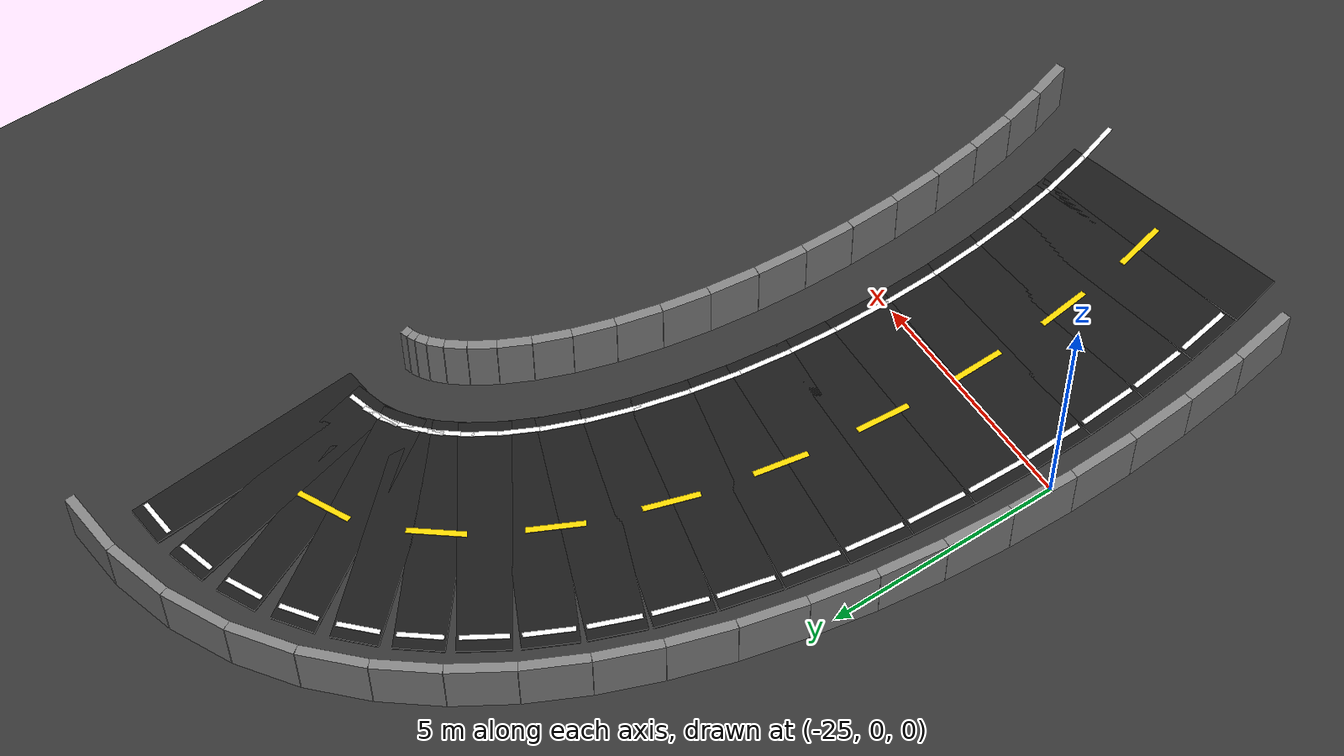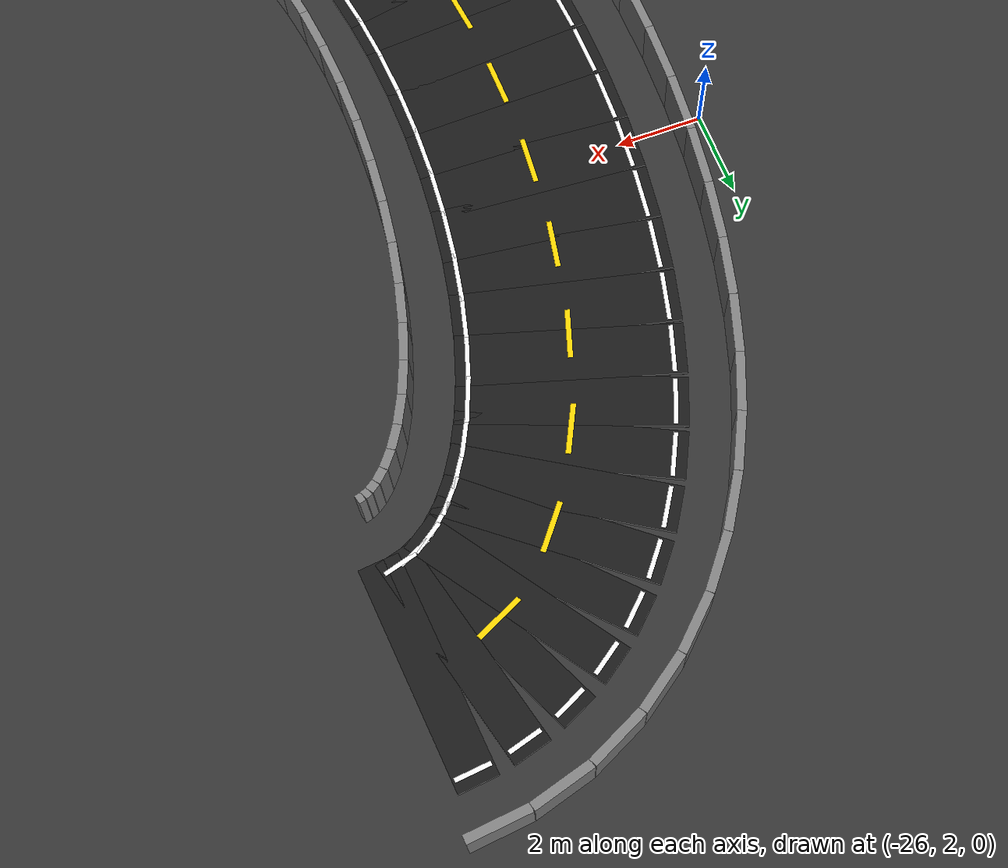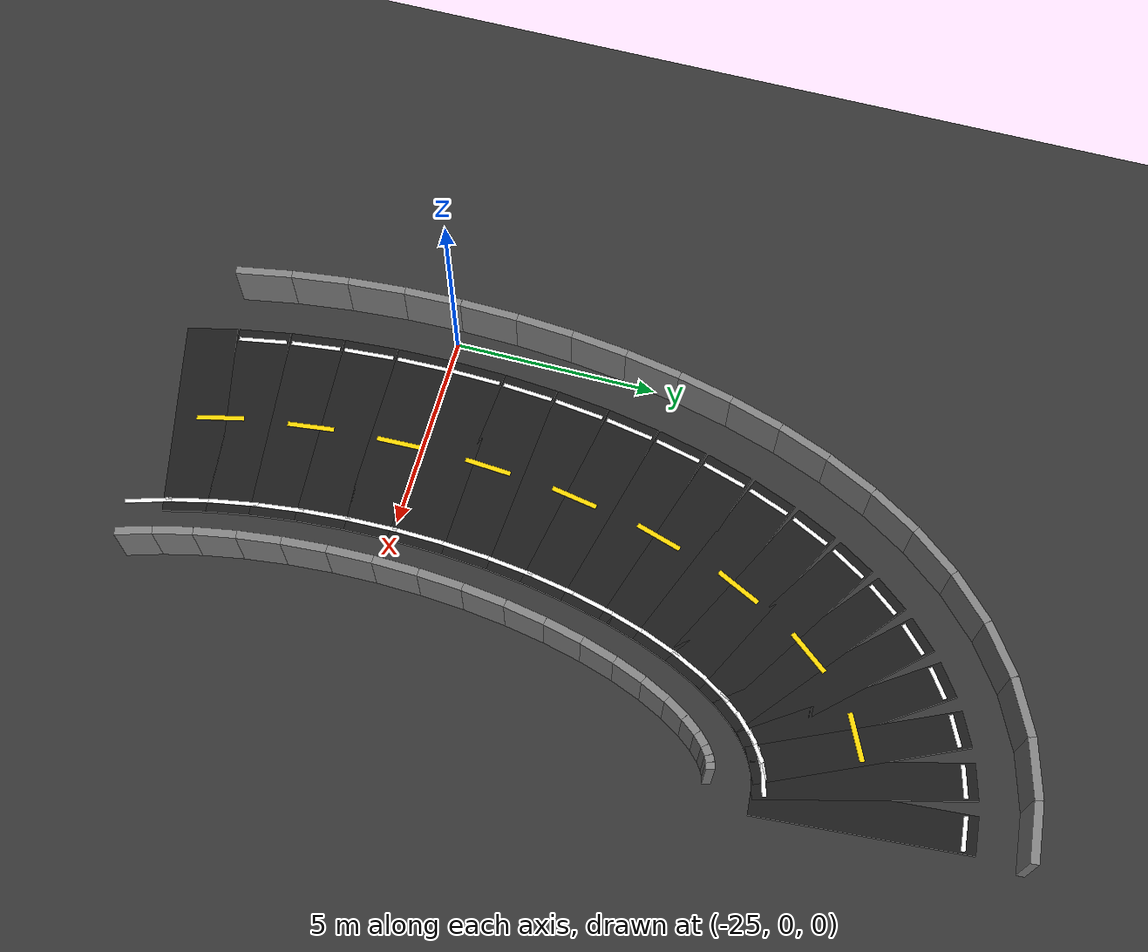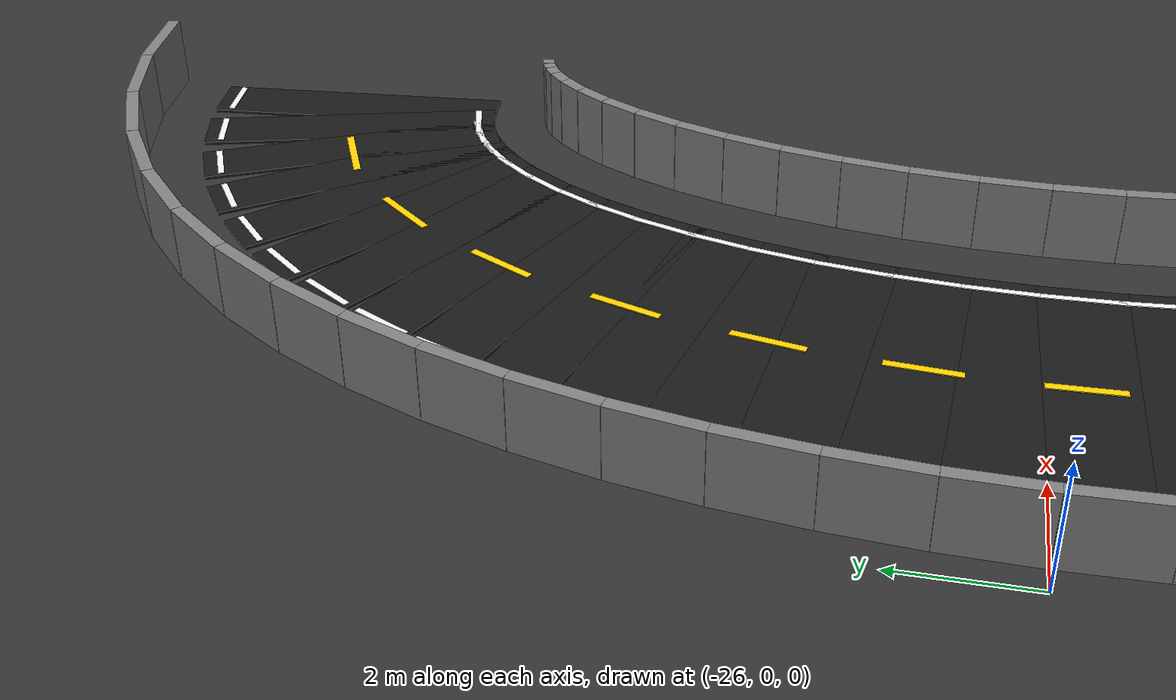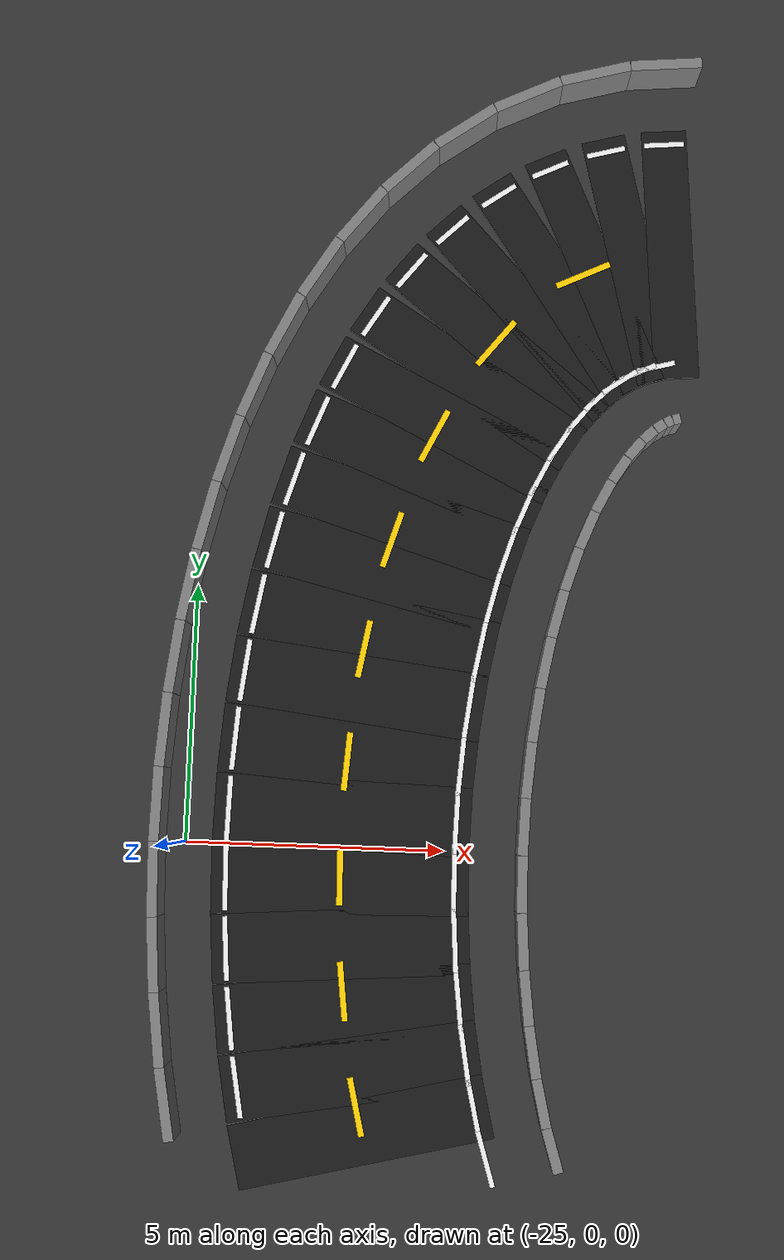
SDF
<sdf version="1.6">
 <world name="adas_figure8_circuit">
  <model name="ground">
   <static>true</static>
   <link name="link">
    <collision name="collision">
     <geometry><plane><normal>0 0 1</normal><size>80.0 80.0</size></plane></geometry>
    </collision>
    <visual name="visual">
     <geometry><plane><normal>0 0 1</normal><size>80.0 80.0</size></plane></geometry>
     <material><ambient>0.16 0.16 0.16 1</ambient><diffuse>0.20 0.20 0.20 1</diffuse></material>
    </visual>
   </link>
  </model>
  <model name="road_075">
   <static>true</static>
   <pose>-15.9528 11.9671 0.025 0 0 -3.058868</pose>
   <link name="link">
    <collision name="collision"><geometry><box><size>0.8956 5.000 0.05</size></box></geometry></collision>
    <visual name="visual">
     <geometry><box><size>0.8956 5.000 0.05</size></box></geometry>
     <material><ambient>0.07 0.07 0.07 1</ambient><diffuse>0.10 0.10 0.10 1</diffuse></material>
    </visual>
   </link>
  </model>
  <model name="road_076">
   <static>true</static>
   <pose>-16.7232 11.8360 0.025 0 0 -2.884716</pose>
   <link name="link">
    <collision name="collision"><geometry><box><size>0.8734 5.000 0.05</size></box></geometry></collision>
    <visual name="visual">
     <geometry><box><size>0.8734 5.000 0.05</size></box></geometry>
     <material><ambient>0.07 0.07 0.07 1</ambient><diffuse>0.10 0.10 0.10 1</diffuse></material>
    </visual>
   </link>
  </model>
  <model name="road_077">
   <static>true</static>
   <pose>-17.4478 11.5752 0.025 0 0 -2.707447</pose>
   <link name="link">
    <collision name="collision"><geometry><box><size>0.8729 5.000 0.05</size></box></geometry></collision>
    <visual name="visual">
     <geometry><box><size>0.8729 5.000 0.05</size></box></geometry>
     <material><ambient>0.07 0.07 0.07 1</ambient><diffuse>0.10 0.10 0.10 1</diffuse></material>
    </visual>
   </link>
  </model>
  <model name="road_078">
   <static>true</static>
   <pose>-18.1246 11.1876 0.025 0 0 -2.537619</pose>
   <link name="link">
    <collision name="collision"><geometry><box><size>0.8926 5.000 0.05</size></box></geometry></collision>
    <visual name="visual">
     <geometry><box><size>0.8926 5.000 0.05</size></box></geometry>
     <material><ambient>0.07 0.07 0.07 1</ambient><diffuse>0.10 0.10 0.10 1</diffuse></material>
    </visual>
   </link>
  </model>
  <model name="road_079">
   <static>true</static>
   <pose>-18.7517 10.6774 0.025 0 0 -2.383120</pose>
   <link name="link">
    <collision name="collision"><geometry><box><size>0.9291 5.000 0.05</size></box></geometry></collision>
    <visual name="visual">
     <geometry><box><size>0.9291 5.000 0.05</size></box></geometry>
     <material><ambient>0.07 0.07 0.07 1</ambient><diffuse>0.10 0.10 0.10 1</diffuse></material>
    </visual>
   </link>
  </model>
  <model name="road_080">
   <static>true</static>
   <pose>-19.3274 10.0503 0.025 0 0 -2.247587</pose>
   <link name="link">
    <collision name="collision"><geometry><box><size>0.9775 5.000 0.05</size></box></geometry></collision>
    <visual name="visual">
     <geometry><box><size>0.9775 5.000 0.05</size></box></geometry>
     <material><ambient>0.07 0.07 0.07 1</ambient><diffuse>0.10 0.10 0.10 1</diffuse></material>
    </visual>
   </link>
  </model>
  <model name="road_081">
   <static>true</static>
   <pose>-19.8501 9.3130 0.025 0 0 -2.131045</pose>
   <link name="link">
    <collision name="collision"><geometry><box><size>1.0331 5.000 0.05</size></box></geometry></collision>
    <visual name="visual">
     <geometry><box><size>1.0331 5.000 0.05</size></box></geometry>
     <material><ambient>0.07 0.07 0.07 1</ambient><diffuse>0.10 0.10 0.10 1</diffuse></material>
    </visual>
   </link>
  </model>
  <model name="road_082">
   <static>true</static>
   <pose>-20.3184 8.4737 0.025 0 0 -2.031453</pose>
   <link name="link">
    <collision name="collision"><geometry><box><size>1.0915 5.000 0.05</size></box></geometry></collision>
    <visual name="visual">
     <geometry><box><size>1.0915 5.000 0.05</size></box></geometry>
     <material><ambient>0.07 0.07 0.07 1</ambient><diffuse>0.10 0.10 0.10 1</diffuse></material>
    </visual>
   </link>
  </model>
  <model name="road_083">
   <static>true</static>
   <pose>-20.7310 7.5415 0.025 0 0 -1.946007</pose>
   <link name="link">
    <collision name="collision"><geometry><box><size>1.1491 5.000 0.05</size></box></geometry></collision>
    <visual name="visual">
     <geometry><box><size>1.1491 5.000 0.05</size></box></geometry>
     <material><ambient>0.07 0.07 0.07 1</ambient><diffuse>0.10 0.10 0.10 1</diffuse></material>
    </visual>
   </link>
  </model>
  <model name="road_084">
   <static>true</static>
   <pose>-21.0868 6.5267 0.025 0 0 -1.871890</pose>
   <link name="link">
    <collision name="collision"><geometry><box><size>1.2030 5.000 0.05</size></box></geometry></collision>
    <visual name="visual">
     <geometry><box><size>1.2030 5.000 0.05</size></box></geometry>
     <material><ambient>0.07 0.07 0.07 1</ambient><diffuse>0.10 0.10 0.10 1</diffuse></material>
    </visual>
   </link>
  </model>
  <model name="road_085">
   <static>true</static>
   <pose>-21.3848 5.4404 0.025 0 0 -1.806578</pose>
   <link name="link">
    <collision name="collision"><geometry><box><size>1.2510 5.000 0.05</size></box></geometry></collision>
    <visual name="visual">
     <geometry><box><size>1.2510 5.000 0.05</size></box></geometry>
     <material><ambient>0.07 0.07 0.07 1</ambient><diffuse>0.10 0.10 0.10 1</diffuse></material>
    </visual>
   </link>
  </model>
  <model name="road_086">
   <static>true</static>
   <pose>-21.6242 4.2945 0.025 0 0 -1.747916</pose>
   <link name="link">
    <collision name="collision"><geometry><box><size>1.2913 5.000 0.05</size></box></geometry></collision>
    <visual name="visual">
     <geometry><box><size>1.2913 5.000 0.05</size></box></geometry>
     <material><ambient>0.07 0.07 0.07 1</ambient><diffuse>0.10 0.10 0.10 1</diffuse></material>
    </visual>
   </link>
  </model>
  <model name="road_087">
   <static>true</static>
   <pose>-21.8043 3.1016 0.025 0 0 -1.694080</pose>
   <link name="link">
    <collision name="collision"><geometry><box><size>1.3225 5.000 0.05</size></box></geometry></collision>
    <visual name="visual">
     <geometry><box><size>1.3225 5.000 0.05</size></box></geometry>
     <material><ambient>0.07 0.07 0.07 1</ambient><diffuse>0.10 0.10 0.10 1</diffuse></material>
    </visual>
   </link>
  </model>
  <model name="road_088">
   <static>true</static>
   <pose>-21.9247 1.8746 0.025 0 0 -1.643510</pose>
   <link name="link">
    <collision name="collision"><geometry><box><size>1.3439 5.000 0.05</size></box></geometry></collision>
    <visual name="visual">
     <geometry><box><size>1.3439 5.000 0.05</size></box></geometry>
     <material><ambient>0.07 0.07 0.07 1</ambient><diffuse>0.10 0.10 0.10 1</diffuse></material>
    </visual>
   </link>
  </model>
  <model name="road_089">
   <static>true</static>
   <pose>-21.9849 0.6272 0.025 0 0 -1.594828</pose>
   <link name="link">
    <collision name="collision"><geometry><box><size>1.3547 5.000 0.05</size></box></geometry></collision>
    <visual name="visual">
     <geometry><box><size>1.3547 5.000 0.05</size></box></geometry>
     <material><ambient>0.07 0.07 0.07 1</ambient><diffuse>0.10 0.10 0.10 1</diffuse></material>
    </visual>
   </link>
  </model>
  <model name="road_090">
   <static>true</static>
   <pose>-21.9849 -0.6272 0.025 0 0 -1.546764</pose>
   <link name="link">
    <collision name="collision"><geometry><box><size>1.3547 5.000 0.05</size></box></geometry></collision>
    <visual name="visual">
     <geometry><box><size>1.3547 5.000 0.05</size></box></geometry>
     <material><ambient>0.07 0.07 0.07 1</ambient><diffuse>0.10 0.10 0.10 1</diffuse></material>
    </visual>
   </link>
  </model>
  <model name="road_091">
   <static>true</static>
   <pose>-21.9247 -1.8746 0.025 0 0 -1.498082</pose>
   <link name="link">
    <collision name="collision"><geometry><box><size>1.3439 5.000 0.05</size></box></geometry></collision>
    <visual name="visual">
     <geometry><box><size>1.3439 5.000 0.05</size></box></geometry>
     <material><ambient>0.07 0.07 0.07 1</ambient><diffuse>0.10 0.10 0.10 1</diffuse></material>
    </visual>
   </link>
  </model>
  <model name="road_092">
   <static>true</static>
   <pose>-21.8043 -3.1016 0.025 0 0 -1.447513</pose>
   <link name="link">
    <collision name="collision"><geometry><box><size>1.3225 5.000 0.05</size></box></geometry></collision>
    <visual name="visual">
     <geometry><box><size>1.3225 5.000 0.05</size></box></geometry>
     <material><ambient>0.07 0.07 0.07 1</ambient><diffuse>0.10 0.10 0.10 1</diffuse></material>
    </visual>
   </link>
  </model>
  <model name="road_093">
   <static>true</static>
   <pose>-21.6242 -4.2945 0.025 0 0 -1.393677</pose>
   <link name="link">
    <collision name="collision"><geometry><box><size>1.2913 5.000 0.05</size></box></geometry></collision>
    <visual name="visual">
     <geometry><box><size>1.2913 5.000 0.05</size></box></geometry>
     <material><ambient>0.07 0.07 0.07 1</ambient><diffuse>0.10 0.10 0.10 1</diffuse></material>
    </visual>
   </link>
  </model>
  <model name="road_094">
   <static>true</static>
   <pose>-21.3848 -5.4404 0.025 0 0 -1.335014</pose>
   <link name="link">
    <collision name="collision"><geometry><box><size>1.2510 5.000 0.05</size></box></geometry></collision>
    <visual name="visual">
     <geometry><box><size>1.2510 5.000 0.05</size></box></geometry>
     <material><ambient>0.07 0.07 0.07 1</ambient><diffuse>0.10 0.10 0.10 1</diffuse></material>
    </visual>
   </link>
  </model>
  <model name="center_dash_041">
   <static>true</static>
   <pose>-17.6577 11.4779 0.058 0 0 -2.707447</pose>
   <link name="link">
    <visual name="visual">
     <geometry><box><size>1.150 0.12 0.02</size></box></geometry>
     <material><ambient>1 0.82 0 1</ambient><diffuse>1 0.82 0 1</diffuse></material>
    </visual>
   </link>
  </model>
  <model name="center_dash_042">
   <static>true</static>
   <pose>-19.3334 10.0427 0.058 0 0 -2.247587</pose>
   <link name="link">
    <visual name="visual">
     <geometry><box><size>1.150 0.12 0.02</size></box></geometry>
     <material><ambient>1 0.82 0 1</ambient><diffuse>1 0.82 0 1</diffuse></material>
    </visual>
   </link>
  </model>
  <model name="center_dash_043">
   <static>true</static>
   <pose>-20.4816 8.1448 0.058 0 0 -2.031453</pose>
   <link name="link">
    <visual name="visual">
     <geometry><box><size>1.150 0.12 0.02</size></box></geometry>
     <material><ambient>1 0.82 0 1</ambient><diffuse>1 0.82 0 1</diffuse></material>
    </visual>
   </link>
  </model>
  <model name="center_dash_044">
   <static>true</static>
   <pose>-21.2339 6.0532 0.058 0 0 -1.871890</pose>
   <link name="link">
    <visual name="visual">
     <geometry><box><size>1.150 0.12 0.02</size></box></geometry>
     <material><ambient>1 0.82 0 1</ambient><diffuse>1 0.82 0 1</diffuse></material>
    </visual>
   </link>
  </model>
  <model name="center_dash_045">
   <static>true</static>
   <pose>-21.6987 3.8783 0.058 0 0 -1.747916</pose>
   <link name="link">
    <visual name="visual">
     <geometry><box><size>1.150 0.12 0.02</size></box></geometry>
     <material><ambient>1 0.82 0 1</ambient><diffuse>1 0.82 0 1</diffuse></material>
    </visual>
   </link>
  </model>
  <model name="center_dash_046">
   <static>true</static>
   <pose>-21.9398 1.6674 0.058 0 0 -1.643510</pose>
   <link name="link">
    <visual name="visual">
     <geometry><box><size>1.150 0.12 0.02</size></box></geometry>
     <material><ambient>1 0.82 0 1</ambient><diffuse>1 0.82 0 1</diffuse></material>
    </visual>
   </link>
  </model>
  <model name="center_dash_047">
   <static>true</static>
   <pose>-21.9866 -0.5561 0.058 0 0 -1.546764</pose>
   <link name="link">
    <visual name="visual">
     <geometry><box><size>1.150 0.12 0.02</size></box></geometry>
     <material><ambient>1 0.82 0 1</ambient><diffuse>1 0.82 0 1</diffuse></material>
    </visual>
   </link>
  </model>
  <model name="center_dash_048">
   <static>true</static>
   <pose>-21.8447 -2.7756 0.058 0 0 -1.447513</pose>
   <link name="link">
    <visual name="visual">
     <geometry><box><size>1.150 0.12 0.02</size></box></geometry>
     <material><ambient>1 0.82 0 1</ambient><diffuse>1 0.82 0 1</diffuse></material>
    </visual>
   </link>
  </model>
  <model name="center_dash_049">
   <static>true</static>
   <pose>-21.4973 -4.9724 0.058 0 0 -1.335014</pose>
   <link name="link">
    <visual name="visual">
     <geometry><box><size>1.150 0.12 0.02</size></box></geometry>
     <material><ambient>1 0.82 0 1</ambient><diffuse>1 0.82 0 1</diffuse></material>
    </visual>
   </link>
  </model>
  <model name="edge_left_076">
   <static>true</static>
   <pose>-16.1592 9.6889 0.058 0 0 -2.884716</pose>
   <link name="link">
    <visual name="visual">
     <geometry><box><size>0.7734 0.10 0.02</size></box></geometry>
     <material><ambient>0.95 0.95 0.95 1</ambient><diffuse>0.95 0.95 0.95 1</diffuse></material>
    </visual>
   </link>
  </model>
  <model name="edge_left_077">
   <static>true</static>
   <pose>-16.5140 9.5612 0.058 0 0 -2.707447</pose>
   <link name="link">
    <visual name="visual">
     <geometry><box><size>0.7729 0.10 0.02</size></box></geometry>
     <material><ambient>0.95 0.95 0.95 1</ambient><diffuse>0.95 0.95 0.95 1</diffuse></material>
    </visual>
   </link>
  </model>
  <model name="edge_left_078">
   <static>true</static>
   <pose>-16.8638 9.3604 0.058 0 0 -2.537619</pose>
   <link name="link">
    <visual name="visual">
     <geometry><box><size>0.7926 0.10 0.02</size></box></geometry>
     <material><ambient>0.95 0.95 0.95 1</ambient><diffuse>0.95 0.95 0.95 1</diffuse></material>
    </visual>
   </link>
  </model>
  <model name="edge_left_079">
   <static>true</static>
   <pose>-17.2247 9.0660 0.058 0 0 -2.383120</pose>
   <link name="link">
    <visual name="visual">
     <geometry><box><size>0.8291 0.10 0.02</size></box></geometry>
     <material><ambient>0.95 0.95 0.95 1</ambient><diffuse>0.95 0.95 0.95 1</diffuse></material>
    </visual>
   </link>
  </model>
  <model name="edge_left_080">
   <static>true</static>
   <pose>-17.5967 8.6599 0.058 0 0 -2.247587</pose>
   <link name="link">
    <visual name="visual">
     <geometry><box><size>0.8775 0.10 0.02</size></box></geometry>
     <material><ambient>0.95 0.95 0.95 1</ambient><diffuse>0.95 0.95 0.95 1</diffuse></material>
    </visual>
   </link>
  </model>
  <model name="edge_left_081">
   <static>true</static>
   <pose>-17.9695 8.1333 0.058 0 0 -2.131045</pose>
   <link name="link">
    <visual name="visual">
     <geometry><box><size>0.9331 0.10 0.02</size></box></geometry>
     <material><ambient>0.95 0.95 0.95 1</ambient><diffuse>0.95 0.95 0.95 1</diffuse></material>
    </visual>
   </link>
  </model>
  <model name="edge_left_082">
   <static>true</static>
   <pose>-18.3298 7.4868 0.058 0 0 -2.031453</pose>
   <link name="link">
    <visual name="visual">
     <geometry><box><size>0.9915 0.10 0.02</size></box></geometry>
     <material><ambient>0.95 0.95 0.95 1</ambient><diffuse>0.95 0.95 0.95 1</diffuse></material>
    </visual>
   </link>
  </model>
  <model name="edge_left_083">
   <static>true</static>
   <pose>-18.6655 6.7279 0.058 0 0 -1.946007</pose>
   <link name="link">
    <visual name="visual">
     <geometry><box><size>1.0491 0.10 0.02</size></box></geometry>
     <material><ambient>0.95 0.95 0.95 1</ambient><diffuse>0.95 0.95 0.95 1</diffuse></material>
    </visual>
   </link>
  </model>
  <model name="edge_left_084">
   <static>true</static>
   <pose>-18.9667 5.8683 0.058 0 0 -1.871890</pose>
   <link name="link">
    <visual name="visual">
     <geometry><box><size>1.1030 0.10 0.02</size></box></geometry>
     <material><ambient>0.95 0.95 0.95 1</ambient><diffuse>0.95 0.95 0.95 1</diffuse></material>
    </visual>
   </link>
  </model>
  <model name="edge_left_085">
   <static>true</static>
   <pose>-19.2262 4.9218 0.058 0 0 -1.806578</pose>
   <link name="link">
    <visual name="visual">
     <geometry><box><size>1.1510 0.10 0.02</size></box></geometry>
     <material><ambient>0.95 0.95 0.95 1</ambient><diffuse>0.95 0.95 0.95 1</diffuse></material>
    </visual>
   </link>
  </model>
  <model name="edge_left_086">
   <static>true</static>
   <pose>-19.4389 3.9034 0.058 0 0 -1.747916</pose>
   <link name="link">
    <visual name="visual">
     <geometry><box><size>1.1913 0.10 0.02</size></box></geometry>
     <material><ambient>0.95 0.95 0.95 1</ambient><diffuse>0.95 0.95 0.95 1</diffuse></material>
    </visual>
   </link>
  </model>
  <model name="edge_left_087">
   <static>true</static>
   <pose>-19.6012 2.8286 0.058 0 0 -1.694080</pose>
   <link name="link">
    <visual name="visual">
     <geometry><box><size>1.2225 0.10 0.02</size></box></geometry>
     <material><ambient>0.95 0.95 0.95 1</ambient><diffuse>0.95 0.95 0.95 1</diffuse></material>
    </visual>
   </link>
  </model>
  <model name="edge_left_088">
   <static>true</static>
   <pose>-19.7105 1.7134 0.058 0 0 -1.643510</pose>
   <link name="link">
    <visual name="visual">
     <geometry><box><size>1.2439 0.10 0.02</size></box></geometry>
     <material><ambient>0.95 0.95 0.95 1</ambient><diffuse>0.95 0.95 0.95 1</diffuse></material>
    </visual>
   </link>
  </model>
  <model name="edge_left_089">
   <static>true</static>
   <pose>-19.7656 0.5738 0.058 0 0 -1.594828</pose>
   <link name="link">
    <visual name="visual">
     <geometry><box><size>1.2547 0.10 0.02</size></box></geometry>
     <material><ambient>0.95 0.95 0.95 1</ambient><diffuse>0.95 0.95 0.95 1</diffuse></material>
    </visual>
   </link>
  </model>
  <model name="edge_left_090">
   <static>true</static>
   <pose>-19.7656 -0.5738 0.058 0 0 -1.546764</pose>
   <link name="link">
    <visual name="visual">
     <geometry><box><size>1.2547 0.10 0.02</size></box></geometry>
     <material><ambient>0.95 0.95 0.95 1</ambient><diffuse>0.95 0.95 0.95 1</diffuse></material>
    </visual>
   </link>
  </model>
  <model name="edge_left_091">
   <static>true</static>
   <pose>-19.7105 -1.7134 0.058 0 0 -1.498082</pose>
   <link name="link">
    <visual name="visual">
     <geometry><box><size>1.2439 0.10 0.02</size></box></geometry>
     <material><ambient>0.95 0.95 0.95 1</ambient><diffuse>0.95 0.95 0.95 1</diffuse></material>
    </visual>
   </link>
  </model>
  <model name="edge_left_092">
   <static>true</static>
   <pose>-19.6012 -2.8286 0.058 0 0 -1.447513</pose>
   <link name="link">
    <visual name="visual">
     <geometry><box><size>1.2225 0.10 0.02</size></box></geometry>
     <material><ambient>0.95 0.95 0.95 1</ambient><diffuse>0.95 0.95 0.95 1</diffuse></material>
    </visual>
   </link>
  </model>
  <model name="edge_left_093">
   <static>true</static>
   <pose>-19.4389 -3.9034 0.058 0 0 -1.393677</pose>
   <link name="link">
    <visual name="visual">
     <geometry><box><size>1.1913 0.10 0.02</size></box></geometry>
     <material><ambient>0.95 0.95 0.95 1</ambient><diffuse>0.95 0.95 0.95 1</diffuse></material>
    </visual>
   </link>
  </model>
  <model name="edge_left_094">
   <static>true</static>
   <pose>-19.2262 -4.9218 0.058 0 0 -1.335014</pose>
   <link name="link">
    <visual name="visual">
     <geometry><box><size>1.1510 0.10 0.02</size></box></geometry>
     <material><ambient>0.95 0.95 0.95 1</ambient><diffuse>0.95 0.95 0.95 1</diffuse></material>
    </visual>
   </link>
  </model>
  <model name="edge_left_095">
   <static>true</static>
   <pose>-18.9667 -5.8683 0.058 0 0 -1.269703</pose>
   <link name="link">
    <visual name="visual">
     <geometry><box><size>1.1030 0.10 0.02</size></box></geometry>
     <material><ambient>0.95 0.95 0.95 1</ambient><diffuse>0.95 0.95 0.95 1</diffuse></material>
    </visual>
   </link>
  </model>
  <model name="edge_right_075">
   <static>true</static>
   <pose>-16.1362 14.1795 0.058 0 0 -3.058868</pose>
   <link name="link">
    <visual name="visual">
     <geometry><box><size>0.7956 0.10 0.02</size></box></geometry>
     <material><ambient>0.95 0.95 0.95 1</ambient><diffuse>0.95 0.95 0.95 1</diffuse></material>
    </visual>
   </link>
  </model>
  <model name="edge_right_076">
   <static>true</static>
   <pose>-17.2872 13.9832 0.058 0 0 -2.884716</pose>
   <link name="link">
    <visual name="visual">
     <geometry><box><size>0.7734 0.10 0.02</size></box></geometry>
     <material><ambient>0.95 0.95 0.95 1</ambient><diffuse>0.95 0.95 0.95 1</diffuse></material>
    </visual>
   </link>
  </model>
  <model name="edge_right_077">
   <static>true</static>
   <pose>-18.3816 13.5893 0.058 0 0 -2.707447</pose>
   <link name="link">
    <visual name="visual">
     <geometry><box><size>0.7729 0.10 0.02</size></box></geometry>
     <material><ambient>0.95 0.95 0.95 1</ambient><diffuse>0.95 0.95 0.95 1</diffuse></material>
    </visual>
   </link>
  </model>
  <model name="edge_right_078">
   <static>true</static>
   <pose>-19.3853 13.0149 0.058 0 0 -2.537619</pose>
   <link name="link">
    <visual name="visual">
     <geometry><box><size>0.7926 0.10 0.02</size></box></geometry>
     <material><ambient>0.95 0.95 0.95 1</ambient><diffuse>0.95 0.95 0.95 1</diffuse></material>
    </visual>
   </link>
  </model>
  <model name="edge_right_079">
   <static>true</static>
   <pose>-20.2786 12.2889 0.058 0 0 -2.383120</pose>
   <link name="link">
    <visual name="visual">
     <geometry><box><size>0.8291 0.10 0.02</size></box></geometry>
     <material><ambient>0.95 0.95 0.95 1</ambient><diffuse>0.95 0.95 0.95 1</diffuse></material>
    </visual>
   </link>
  </model>
  <model name="edge_right_080">
   <static>true</static>
   <pose>-21.0580 11.4406 0.058 0 0 -2.247587</pose>
   <link name="link">
    <visual name="visual">
     <geometry><box><size>0.8775 0.10 0.02</size></box></geometry>
     <material><ambient>0.95 0.95 0.95 1</ambient><diffuse>0.95 0.95 0.95 1</diffuse></material>
    </visual>
   </link>
  </model>
  <model name="edge_right_081">
   <static>true</static>
   <pose>-21.7307 10.4927 0.058 0 0 -2.131045</pose>
   <link name="link">
    <visual name="visual">
     <geometry><box><size>0.9331 0.10 0.02</size></box></geometry>
     <material><ambient>0.95 0.95 0.95 1</ambient><diffuse>0.95 0.95 0.95 1</diffuse></material>
    </visual>
   </link>
  </model>
  <model name="edge_right_082">
   <static>true</static>
   <pose>-22.3070 9.4605 0.058 0 0 -2.031453</pose>
   <link name="link">
    <visual name="visual">
     <geometry><box><size>0.9915 0.10 0.02</size></box></geometry>
     <material><ambient>0.95 0.95 0.95 1</ambient><diffuse>0.95 0.95 0.95 1</diffuse></material>
    </visual>
   </link>
  </model>
  <model name="edge_right_083">
   <static>true</static>
   <pose>-22.7966 8.3551 0.058 0 0 -1.946007</pose>
   <link name="link">
    <visual name="visual">
     <geometry><box><size>1.0491 0.10 0.02</size></box></geometry>
     <material><ambient>0.95 0.95 0.95 1</ambient><diffuse>0.95 0.95 0.95 1</diffuse></material>
    </visual>
   </link>
  </model>
  <model name="edge_right_084">
   <static>true</static>
   <pose>-23.2069 7.1851 0.058 0 0 -1.871890</pose>
   <link name="link">
    <visual name="visual">
     <geometry><box><size>1.1030 0.10 0.02</size></box></geometry>
     <material><ambient>0.95 0.95 0.95 1</ambient><diffuse>0.95 0.95 0.95 1</diffuse></material>
    </visual>
   </link>
  </model>
  <model name="edge_right_085">
   <static>true</static>
   <pose>-23.5434 5.9590 0.058 0 0 -1.806578</pose>
   <link name="link">
    <visual name="visual">
     <geometry><box><size>1.1510 0.10 0.02</size></box></geometry>
     <material><ambient>0.95 0.95 0.95 1</ambient><diffuse>0.95 0.95 0.95 1</diffuse></material>
    </visual>
   </link>
  </model>
  <model name="edge_right_086">
   <static>true</static>
   <pose>-23.8095 4.6857 0.058 0 0 -1.747916</pose>
   <link name="link">
    <visual name="visual">
     <geometry><box><size>1.1913 0.10 0.02</size></box></geometry>
     <material><ambient>0.95 0.95 0.95 1</ambient><diffuse>0.95 0.95 0.95 1</diffuse></material>
    </visual>
   </link>
  </model>
  <model name="edge_right_087">
   <static>true</static>
   <pose>-24.0075 3.3746 0.058 0 0 -1.694080</pose>
   <link name="link">
    <visual name="visual">
     <geometry><box><size>1.2225 0.10 0.02</size></box></geometry>
     <material><ambient>0.95 0.95 0.95 1</ambient><diffuse>0.95 0.95 0.95 1</diffuse></material>
    </visual>
   </link>
  </model>
  <model name="edge_right_088">
   <static>true</static>
   <pose>-24.1388 2.0359 0.058 0 0 -1.643510</pose>
   <link name="link">
    <visual name="visual">
     <geometry><box><size>1.2439 0.10 0.02</size></box></geometry>
     <material><ambient>0.95 0.95 0.95 1</ambient><diffuse>0.95 0.95 0.95 1</diffuse></material>
    </visual>
   </link>
  </model>
  <model name="edge_right_089">
   <static>true</static>
   <pose>-24.2043 0.6805 0.058 0 0 -1.594828</pose>
   <link name="link">
    <visual name="visual">
     <geometry><box><size>1.2547 0.10 0.02</size></box></geometry>
     <material><ambient>0.95 0.95 0.95 1</ambient><diffuse>0.95 0.95 0.95 1</diffuse></material>
    </visual>
   </link>
  </model>
  <model name="edge_right_090">
   <static>true</static>
   <pose>-24.2043 -0.6805 0.058 0 0 -1.546764</pose>
   <link name="link">
    <visual name="visual">
     <geometry><box><size>1.2547 0.10 0.02</size></box></geometry>
     <material><ambient>0.95 0.95 0.95 1</ambient><diffuse>0.95 0.95 0.95 1</diffuse></material>
    </visual>
   </link>
  </model>
  <model name="edge_right_091">
   <static>true</static>
   <pose>-24.1388 -2.0359 0.058 0 0 -1.498082</pose>
   <link name="link">
    <visual name="visual">
     <geometry><box><size>1.2439 0.10 0.02</size></box></geometry>
     <material><ambient>0.95 0.95 0.95 1</ambient><diffuse>0.95 0.95 0.95 1</diffuse></material>
    </visual>
   </link>
  </model>
  <model name="edge_right_092">
   <static>true</static>
   <pose>-24.0075 -3.3746 0.058 0 0 -1.447513</pose>
   <link name="link">
    <visual name="visual">
     <geometry><box><size>1.2225 0.10 0.02</size></box></geometry>
     <material><ambient>0.95 0.95 0.95 1</ambient><diffuse>0.95 0.95 0.95 1</diffuse></material>
    </visual>
   </link>
  </model>
  <model name="edge_right_093">
   <static>true</static>
   <pose>-23.8095 -4.6857 0.058 0 0 -1.393677</pose>
   <link name="link">
    <visual name="visual">
     <geometry><box><size>1.1913 0.10 0.02</size></box></geometry>
     <material><ambient>0.95 0.95 0.95 1</ambient><diffuse>0.95 0.95 0.95 1</diffuse></material>
    </visual>
   </link>
  </model>
  <model name="slam_barrier_right_075">
   <static>true</static>
   <pose>-16.2468 15.4423 0.6000
        0 0 -3.058156</pose>
   <link name="link">
    <collision name="collision">
     <geometry><box><size>1.3856
                0.2000
                1.2000</size></box></geometry>
    </collision>
    <visual name="visual">
     <geometry><box><size>1.3856
                0.2000
                1.2000</size></box></geometry>
     <material><ambient>0.4 0.4 0.4 1</ambient><diffuse>0.5 0.5 0.5 1</diffuse></material>
    </visual>
   </link>
  </model>
  <model name="slam_barrier_left_076">
   <static>true</static>
   <pose>-15.8359 8.4645 0.6000
        0 0 -2.886639</pose>
   <link name="link">
    <collision name="collision">
     <geometry><box><size>0.1543
                0.2000
                1.2000</size></box></geometry>
    </collision>
    <visual name="visual">
     <geometry><box><size>0.1543
                0.2000
                1.2000</size></box></geometry>
     <material><ambient>0.4 0.4 0.4 1</ambient><diffuse>0.5 0.5 0.5 1</diffuse></material>
    </visual>
   </link>
  </model>
  <model name="slam_barrier_right_076">
   <static>true</static>
   <pose>-17.6105 15.2075 0.6000
        0 0 -2.884502</pose>
   <link name="link">
    <collision name="collision">
     <geometry><box><size>1.3925
                0.2000
                1.2000</size></box></geometry>
    </collision>
    <visual name="visual">
     <geometry><box><size>1.3925
                0.2000
                1.2000</size></box></geometry>
     <material><ambient>0.4 0.4 0.4 1</ambient><diffuse>0.5 0.5 0.5 1</diffuse></material>
    </visual>
   </link>
  </model>
  <model name="slam_barrier_left_077">
   <static>true</static>
   <pose>-15.9838 8.4108 0.6000
        0 0 -2.704333</pose>
   <link name="link">
    <collision name="collision">
     <geometry><box><size>0.1618
                0.2000
                1.2000</size></box></geometry>
    </collision>
    <visual name="visual">
     <geometry><box><size>0.1618
                0.2000
                1.2000</size></box></geometry>
     <material><ambient>0.4 0.4 0.4 1</ambient><diffuse>0.5 0.5 0.5 1</diffuse></material>
    </visual>
   </link>
  </model>
  <model name="slam_barrier_right_077">
   <static>true</static>
   <pose>-18.9118 14.7396 0.6000
        0 0 -2.707811</pose>
   <link name="link">
    <collision name="collision">
     <geometry><box><size>1.3839
                0.2000
                1.2000</size></box></geometry>
    </collision>
    <visual name="visual">
     <geometry><box><size>1.3839
                0.2000
                1.2000</size></box></geometry>
     <material><ambient>0.4 0.4 0.4 1</ambient><diffuse>0.5 0.5 0.5 1</diffuse></material>
    </visual>
   </link>
  </model>
  <model name="slam_barrier_left_078">
   <static>true</static>
   <pose>-16.1486 8.3128 0.6000
        0 0 -2.533037</pose>
   <link name="link">
    <collision name="collision">
     <geometry><box><size>0.2230
                0.2000
                1.2000</size></box></geometry>
    </collision>
    <visual name="visual">
     <geometry><box><size>0.2230
                0.2000
                1.2000</size></box></geometry>
     <material><ambient>0.4 0.4 0.4 1</ambient><diffuse>0.5 0.5 0.5 1</diffuse></material>
    </visual>
   </link>
  </model>
  <model name="slam_barrier_right_078">
   <static>true</static>
   <pose>-20.1005 14.0624 0.6000
        0 0 -2.538369</pose>
   <link name="link">
    <collision name="collision">
     <geometry><box><size>1.3622
                0.2000
                1.2000</size></box></geometry>
    </collision>
    <visual name="visual">
     <geometry><box><size>1.3622
                0.2000
                1.2000</size></box></geometry>
     <material><ambient>0.4 0.4 0.4 1</ambient><diffuse>0.5 0.5 0.5 1</diffuse></material>
    </visual>
   </link>
  </model>
  <model name="slam_barrier_left_079">
   <static>true</static>
   <pose>-16.3563 8.1382 0.6000
        0 0 -2.379595</pose>
   <link name="link">
    <collision name="collision">
     <geometry><box><size>0.3213
                0.2000
                1.2000</size></box></geometry>
    </collision>
    <visual name="visual">
     <geometry><box><size>0.3213
                0.2000
                1.2000</size></box></geometry>
     <material><ambient>0.4 0.4 0.4 1</ambient><diffuse>0.5 0.5 0.5 1</diffuse></material>
    </visual>
   </link>
  </model>
  <model name="slam_barrier_right_079">
   <static>true</static>
   <pose>-21.1470 13.2167 0.6000
        0 0 -2.383967</pose>
   <link name="link">
    <collision name="collision">
     <geometry><box><size>1.3369
                0.2000
                1.2000</size></box></geometry>
    </collision>
    <visual name="visual">
     <geometry><box><size>1.3369
                0.2000
                1.2000</size></box></geometry>
     <material><ambient>0.4 0.4 0.4 1</ambient><diffuse>0.5 0.5 0.5 1</diffuse></material>
    </visual>
   </link>
  </model>
  <model name="slam_barrier_left_080">
   <static>true</static>
   <pose>-16.6091 7.8565 0.6000
        0 0 -2.245349</pose>
   <link name="link">
    <collision name="collision">
     <geometry><box><size>0.4373
                0.2000
                1.2000</size></box></geometry>
    </collision>
    <visual name="visual">
     <geometry><box><size>0.4373
                0.2000
                1.2000</size></box></geometry>
     <material><ambient>0.4 0.4 0.4 1</ambient><diffuse>0.5 0.5 0.5 1</diffuse></material>
    </visual>
   </link>
  </model>
  <model name="slam_barrier_right_080">
   <static>true</static>
   <pose>-22.0456 12.2440 0.6000
        0 0 -2.248330</pose>
   <link name="link">
    <collision name="collision">
     <geometry><box><size>1.3178
                0.2000
                1.2000</size></box></geometry>
    </collision>
    <visual name="visual">
     <geometry><box><size>1.3178
                0.2000
                1.2000</size></box></geometry>
     <material><ambient>0.4 0.4 0.4 1</ambient><diffuse>0.5 0.5 0.5 1</diffuse></material>
    </visual>
   </link>
  </model>
  <model name="slam_barrier_left_081">
   <static>true</static>
   <pose>-16.8931 7.4499 0.6000
        0 0 -2.129710</pose>
   <link name="link">
    <collision name="collision">
     <geometry><box><size>0.5563
                0.2000
                1.2000</size></box></geometry>
    </collision>
    <visual name="visual">
     <geometry><box><size>0.5563
                0.2000
                1.2000</size></box></geometry>
     <material><ambient>0.4 0.4 0.4 1</ambient><diffuse>0.5 0.5 0.5 1</diffuse></material>
    </visual>
   </link>
  </model>
  <model name="slam_barrier_right_081">
   <static>true</static>
   <pose>-22.8070 11.1760 0.6000
        0 0 -2.131612</pose>
   <link name="link">
    <collision name="collision">
     <geometry><box><size>1.3100
                0.2000
                1.2000</size></box></geometry>
    </collision>
    <visual name="visual">
     <geometry><box><size>1.3100
                0.2000
                1.2000</size></box></geometry>
     <material><ambient>0.4 0.4 0.4 1</ambient><diffuse>0.5 0.5 0.5 1</diffuse></material>
    </visual>
   </link>
  </model>
  <model name="slam_barrier_left_082">
   <static>true</static>
   <pose>-17.1891 6.9143 0.6000
        0 0 -2.030667</pose>
   <link name="link">
    <collision name="collision">
     <geometry><box><size>0.6692
                0.2000
                1.2000</size></box></geometry>
    </collision>
    <visual name="visual">
     <geometry><box><size>0.6692
                0.2000
                1.2000</size></box></geometry>
     <material><ambient>0.4 0.4 0.4 1</ambient><diffuse>0.5 0.5 0.5 1</diffuse></material>
    </visual>
   </link>
  </model>
  <model name="slam_barrier_right_082">
   <static>true</static>
   <pose>-23.4477 10.0330 0.6000
        0 0 -2.031853</pose>
   <link name="link">
    <collision name="collision">
     <geometry><box><size>1.3139
                0.2000
                1.2000</size></box></geometry>
    </collision>
    <visual name="visual">
     <geometry><box><size>1.3139
                0.2000
                1.2000</size></box></geometry>
     <material><ambient>0.4 0.4 0.4 1</ambient><diffuse>0.5 0.5 0.5 1</diffuse></material>
    </visual>
   </link>
  </model>
  <model name="slam_barrier_left_083">
   <static>true</static>
   <pose>-17.4787 6.2556 0.6000
        0 0 -1.945540</pose>
   <link name="link">
    <collision name="collision">
     <geometry><box><size>0.7712
                0.2000
                1.2000</size></box></geometry>
    </collision>
    <visual name="visual">
     <geometry><box><size>0.7712
                0.2000
                1.2000</size></box></geometry>
     <material><ambient>0.4 0.4 0.4 1</ambient><diffuse>0.5 0.5 0.5 1</diffuse></material>
    </visual>
   </link>
  </model>
  <model name="slam_barrier_right_083">
   <static>true</static>
   <pose>-23.9833 8.8273 0.6000
        0 0 -1.946279</pose>
   <link name="link">
    <collision name="collision">
     <geometry><box><size>1.3270
                0.2000
                1.2000</size></box></geometry>
    </collision>
    <visual name="visual">
     <geometry><box><size>1.3270
                0.2000
                1.2000</size></box></geometry>
     <material><ambient>0.4 0.4 0.4 1</ambient><diffuse>0.5 0.5 0.5 1</diffuse></material>
    </visual>
   </link>
  </model>
  <model name="slam_barrier_left_084">
   <static>true</static>
   <pose>-17.7473 5.4860 0.6000
        0 0 -1.871608</pose>
   <link name="link">
    <collision name="collision">
     <geometry><box><size>0.8602
                0.2000
                1.2000</size></box></geometry>
    </collision>
    <visual name="visual">
     <geometry><box><size>0.8602
                0.2000
                1.2000</size></box></geometry>
     <material><ambient>0.4 0.4 0.4 1</ambient><diffuse>0.5 0.5 0.5 1</diffuse></material>
    </visual>
   </link>
  </model>
  <model name="slam_barrier_right_084">
   <static>true</static>
   <pose>-24.4263 7.5674 0.6000
        0 0 -1.872071</pose>
   <link name="link">
    <collision name="collision">
     <geometry><box><size>1.3459
                0.2000
                1.2000</size></box></geometry>
    </collision>
    <visual name="visual">
     <geometry><box><size>1.3459
                0.2000
                1.2000</size></box></geometry>
     <material><ambient>0.4 0.4 0.4 1</ambient><diffuse>0.5 0.5 0.5 1</diffuse></material>
    </visual>
   </link>
  </model>
  <model name="slam_barrier_left_085">
   <static>true</static>
   <pose>-17.9839 4.6206 0.6000
        0 0 -1.806405</pose>
   <link name="link">
    <collision name="collision">
     <geometry><box><size>0.9350
                0.2000
                1.2000</size></box></geometry>
    </collision>
    <visual name="visual">
     <geometry><box><size>0.9350
                0.2000
                1.2000</size></box></geometry>
     <material><ambient>0.4 0.4 0.4 1</ambient><diffuse>0.5 0.5 0.5 1</diffuse></material>
    </visual>
   </link>
  </model>
  <model name="slam_barrier_right_085">
   <static>true</static>
   <pose>-24.7857 6.2602 0.6000
        0 0 -1.806697</pose>
   <link name="link">
    <collision name="collision">
     <geometry><box><size>1.3670
                0.2000
                1.2000</size></box></geometry>
    </collision>
    <visual name="visual">
     <geometry><box><size>1.3670
                0.2000
                1.2000</size></box></geometry>
     <material><ambient>0.4 0.4 0.4 1</ambient><diffuse>0.5 0.5 0.5 1</diffuse></material>
    </visual>
   </link>
  </model>
  <model name="slam_barrier_left_086">
   <static>true</static>
   <pose>-18.1806 3.6762 0.6000
        0 0 -1.747809</pose>
   <link name="link">
    <collision name="collision">
     <geometry><box><size>0.9952
                0.2000
                1.2000</size></box></geometry>
    </collision>
    <visual name="visual">
     <geometry><box><size>0.9952
                0.2000
                1.2000</size></box></geometry>
     <material><ambient>0.4 0.4 0.4 1</ambient><diffuse>0.5 0.5 0.5 1</diffuse></material>
    </visual>
   </link>
  </model>
  <model name="slam_barrier_right_086">
   <static>true</static>
   <pose>-25.0678 4.9128 0.6000
        0 0 -1.747992</pose>
   <link name="link">
    <collision name="collision">
     <geometry><box><size>1.3873
                0.2000
                1.2000</size></box></geometry>
    </collision>
    <visual name="visual">
     <geometry><box><size>1.3873
                0.2000
                1.2000</size></box></geometry>
     <material><ambient>0.4 0.4 0.4 1</ambient><diffuse>0.5 0.5 0.5 1</diffuse></material>
    </visual>
   </link>
  </model>
  <model name="slam_barrier_left_087">
   <static>true</static>
   <pose>-18.3322 2.6700 0.6000
        0 0 -1.694016</pose>
   <link name="link">
    <collision name="collision">
     <geometry><box><size>1.0405
                0.2000
                1.2000</size></box></geometry>
    </collision>
    <visual name="visual">
     <geometry><box><size>1.0405
                0.2000
                1.2000</size></box></geometry>
     <material><ambient>0.4 0.4 0.4 1</ambient><diffuse>0.5 0.5 0.5 1</diffuse></material>
    </visual>
   </link>
  </model>
  <model name="slam_barrier_right_087">
   <static>true</static>
   <pose>-25.2764 3.5331 0.6000
        0 0 -1.694127</pose>
   <link name="link">
    <collision name="collision">
     <geometry><box><size>1.4045
                0.2000
                1.2000</size></box></geometry>
    </collision>
    <visual name="visual">
     <geometry><box><size>1.4045
                0.2000
                1.2000</size></box></geometry>
     <material><ambient>0.4 0.4 0.4 1</ambient><diffuse>0.5 0.5 0.5 1</diffuse></material>
    </visual>
   </link>
  </model>
  <model name="slam_barrier_left_088">
   <static>true</static>
   <pose>-18.4350 1.6197 0.6000
        0 0 -1.643476</pose>
   <link name="link">
    <collision name="collision">
     <geometry><box><size>1.0708
                0.2000
                1.2000</size></box></geometry>
    </collision>
    <visual name="visual">
     <geometry><box><size>1.0708
                0.2000
                1.2000</size></box></geometry>
     <material><ambient>0.4 0.4 0.4 1</ambient><diffuse>0.5 0.5 0.5 1</diffuse></material>
    </visual>
   </link>
  </model>
  <model name="slam_barrier_right_088">
   <static>true</static>
   <pose>-25.4143 2.1296 0.6000
        0 0 -1.643536</pose>
   <link name="link">
    <collision name="collision">
     <geometry><box><size>1.4169
                0.2000
                1.2000</size></box></geometry>
    </collision>
    <visual name="visual">
     <geometry><box><size>1.4169
                0.2000
                1.2000</size></box></geometry>
     <material><ambient>0.4 0.4 0.4 1</ambient><diffuse>0.5 0.5 0.5 1</diffuse></material>
    </visual>
   </link>
  </model>
  <model name="slam_barrier_left_089">
   <static>true</static>
   <pose>-18.4870 0.5429 0.6000
        0 0 -1.594818</pose>
   <link name="link">
    <collision name="collision">
     <geometry><box><size>1.0860
                0.2000
                1.2000</size></box></geometry>
    </collision>
    <visual name="visual">
     <geometry><box><size>1.0860
                0.2000
                1.2000</size></box></geometry>
     <material><ambient>0.4 0.4 0.4 1</ambient><diffuse>0.5 0.5 0.5 1</diffuse></material>
    </visual>
   </link>
  </model>
  <model name="slam_barrier_right_089">
   <static>true</static>
   <pose>-25.4829 0.7115 0.6000
        0 0 -1.594837</pose>
   <link name="link">
    <collision name="collision">
     <geometry><box><size>1.4234
                0.2000
                1.2000</size></box></geometry>
    </collision>
    <visual name="visual">
     <geometry><box><size>1.4234
                0.2000
                1.2000</size></box></geometry>
     <material><ambient>0.4 0.4 0.4 1</ambient><diffuse>0.5 0.5 0.5 1</diffuse></material>
    </visual>
   </link>
  </model>
  <model name="slam_barrier_left_090">
   <static>true</static>
   <pose>-18.4870 -0.5429 0.6000
        0 0 -1.546775</pose>
   <link name="link">
    <collision name="collision">
     <geometry><box><size>1.0860
                0.2000
                1.2000</size></box></geometry>
    </collision>
    <visual name="visual">
     <geometry><box><size>1.0860
                0.2000
                1.2000</size></box></geometry>
     <material><ambient>0.4 0.4 0.4 1</ambient><diffuse>0.5 0.5 0.5 1</diffuse></material>
    </visual>
   </link>
  </model>
  <model name="slam_barrier_right_090">
   <static>true</static>
   <pose>-25.4829 -0.7115 0.6000
        0 0 -1.546756</pose>
   <link name="link">
    <collision name="collision">
     <geometry><box><size>1.4234
                0.2000
                1.2000</size></box></geometry>
    </collision>
    <visual name="visual">
     <geometry><box><size>1.4234
                0.2000
                1.2000</size></box></geometry>
     <material><ambient>0.4 0.4 0.4 1</ambient><diffuse>0.5 0.5 0.5 1</diffuse></material>
    </visual>
   </link>
  </model>
  <model name="slam_barrier_left_091">
   <static>true</static>
   <pose>-18.4350 -1.6197 0.6000
        0 0 -1.498116</pose>
   <link name="link">
    <collision name="collision">
     <geometry><box><size>1.0708
                0.2000
                1.2000</size></box></geometry>
    </collision>
    <visual name="visual">
     <geometry><box><size>1.0708
                0.2000
                1.2000</size></box></geometry>
     <material><ambient>0.4 0.4 0.4 1</ambient><diffuse>0.5 0.5 0.5 1</diffuse></material>
    </visual>
   </link>
  </model>
  <model name="slam_barrier_right_091">
   <static>true</static>
   <pose>-25.4143 -2.1296 0.6000
        0 0 -1.498057</pose>
   <link name="link">
    <collision name="collision">
     <geometry><box><size>1.4169
                0.2000
                1.2000</size></box></geometry>
    </collision>
    <visual name="visual">
     <geometry><box><size>1.4169
                0.2000
                1.2000</size></box></geometry>
     <material><ambient>0.4 0.4 0.4 1</ambient><diffuse>0.5 0.5 0.5 1</diffuse></material>
    </visual>
   </link>
  </model>
  <model name="slam_barrier_left_092">
   <static>true</static>
   <pose>-18.3322 -2.6700 0.6000
        0 0 -1.447576</pose>
   <link name="link">
    <collision name="collision">
     <geometry><box><size>1.0405
                0.2000
                1.2000</size></box></geometry>
    </collision>
    <visual name="visual">
     <geometry><box><size>1.0405
                0.2000
                1.2000</size></box></geometry>
     <material><ambient>0.4 0.4 0.4 1</ambient><diffuse>0.5 0.5 0.5 1</diffuse></material>
    </visual>
   </link>
  </model>
  <model name="slam_barrier_right_092">
   <static>true</static>
   <pose>-25.2764 -3.5331 0.6000
        0 0 -1.447465</pose>
   <link name="link">
    <collision name="collision">
     <geometry><box><size>1.4045
                0.2000
                1.2000</size></box></geometry>
    </collision>
    <visual name="visual">
     <geometry><box><size>1.4045
                0.2000
                1.2000</size></box></geometry>
     <material><ambient>0.4 0.4 0.4 1</ambient><diffuse>0.5 0.5 0.5 1</diffuse></material>
    </visual>
   </link>
  </model>
  <model name="slam_barrier_left_093">
   <static>true</static>
   <pose>-18.1806 -3.6762 0.6000
        0 0 -1.393783</pose>
   <link name="link">
    <collision name="collision">
     <geometry><box><size>0.9952
                0.2000
                1.2000</size></box></geometry>
    </collision>
    <visual name="visual">
     <geometry><box><size>0.9952
                0.2000
                1.2000</size></box></geometry>
     <material><ambient>0.4 0.4 0.4 1</ambient><diffuse>0.5 0.5 0.5 1</diffuse></material>
    </visual>
   </link>
  </model>
  <model name="slam_barrier_right_093">
   <static>true</static>
   <pose>-25.0678 -4.9128 0.6000
        0 0 -1.393600</pose>
   <link name="link">
    <collision name="collision">
     <geometry><box><size>1.3873
                0.2000
                1.2000</size></box></geometry>
    </collision>
    <visual name="visual">
     <geometry><box><size>1.3873
                0.2000
                1.2000</size></box></geometry>
     <material><ambient>0.4 0.4 0.4 1</ambient><diffuse>0.5 0.5 0.5 1</diffuse></material>
    </visual>
   </link>
  </model>
  <model name="slam_barrier_left_094">
   <static>true</static>
   <pose>-17.9839 -4.6206 0.6000
        0 0 -1.335188</pose>
   <link name="link">
    <collision name="collision">
     <geometry><box><size>0.9350
                0.2000
                1.2000</size></box></geometry>
    </collision>
    <visual name="visual">
     <geometry><box><size>0.9350
                0.2000
                1.2000</size></box></geometry>
     <material><ambient>0.4 0.4 0.4 1</ambient><diffuse>0.5 0.5 0.5 1</diffuse></material>
    </visual>
   </link>
  </model>
  <model name="slam_barrier_left_095">
   <static>true</static>
   <pose>-17.7473 -5.4860 0.6000
        0 0 -1.269985</pose>
   <link name="link">
    <collision name="collision">
     <geometry><box><size>0.8602
                0.2000
                1.2000</size></box></geometry>
    </collision>
    <visual name="visual">
     <geometry><box><size>0.8602
                0.2000
                1.2000</size></box></geometry>
     <material><ambient>0.4 0.4 0.4 1</ambient><diffuse>0.5 0.5 0.5 1</diffuse></material>
    </visual>
   </link>
  </model>
 </world>
</sdf>
